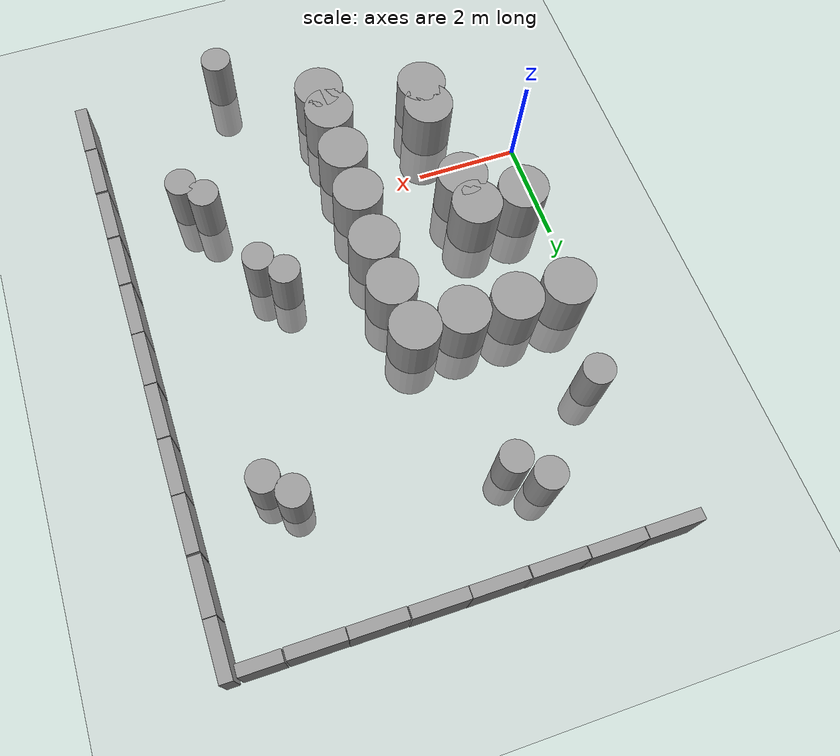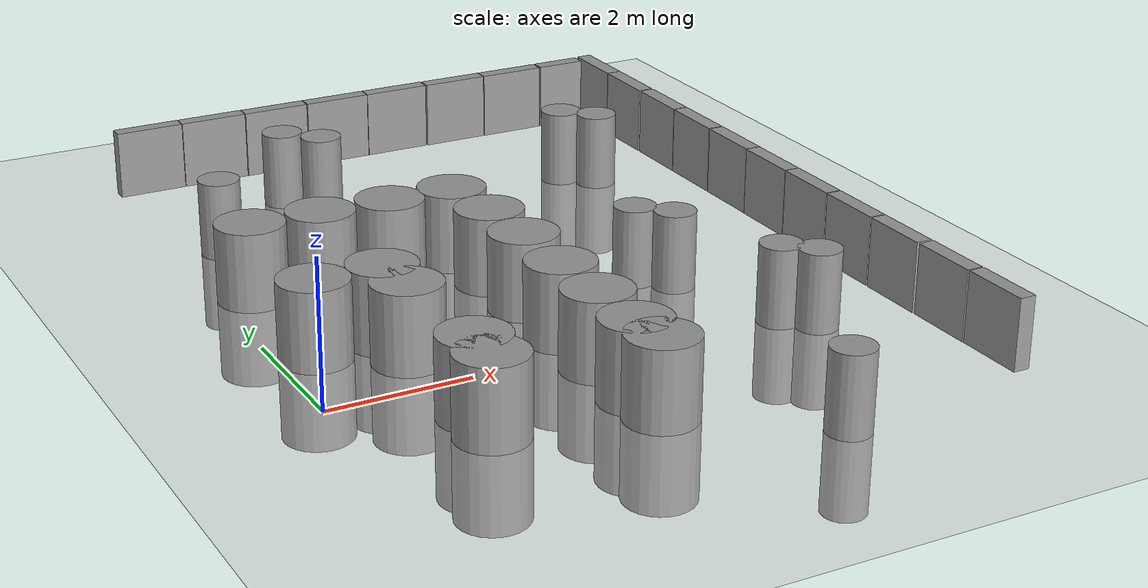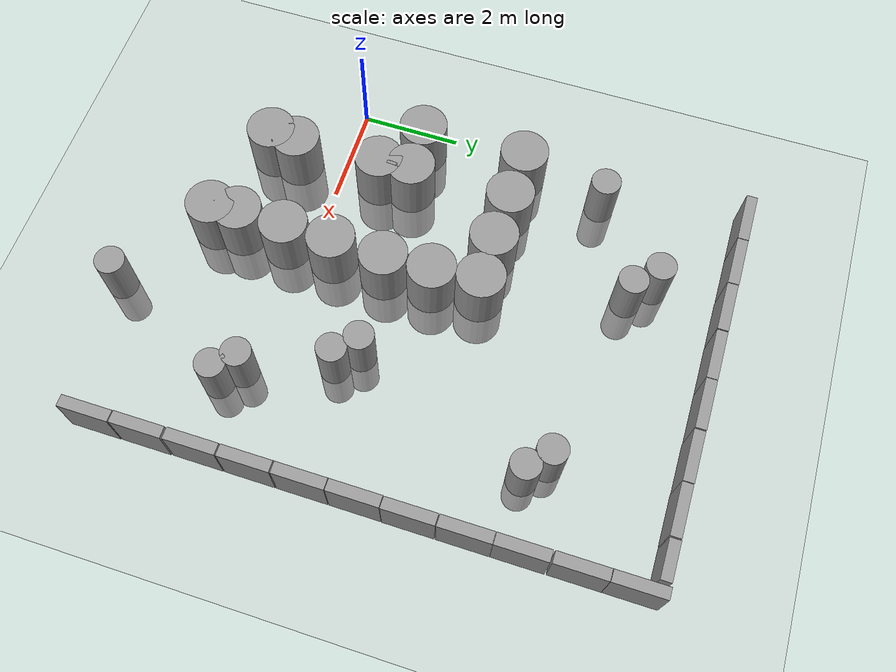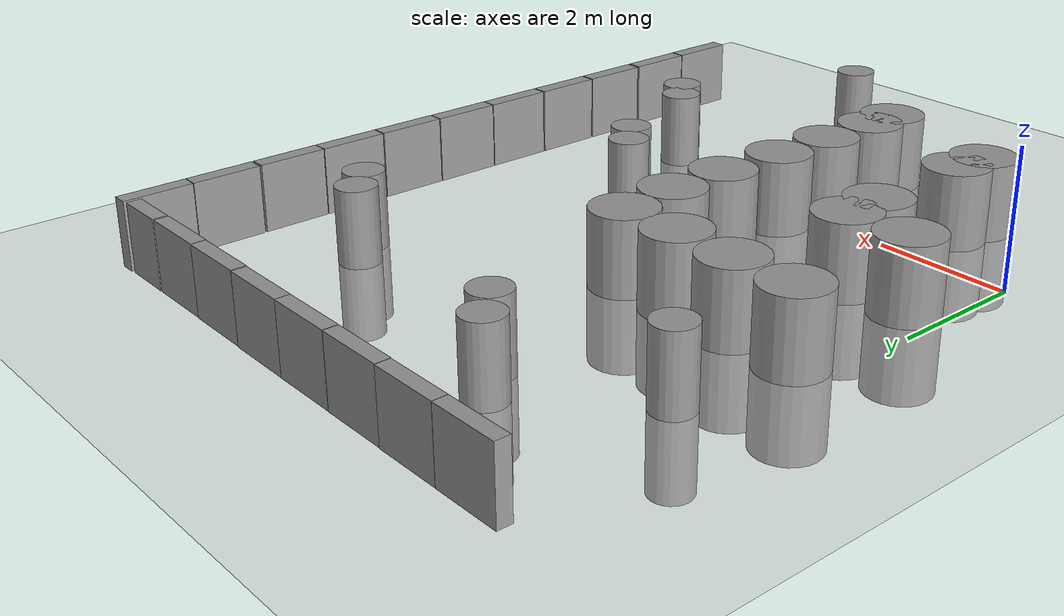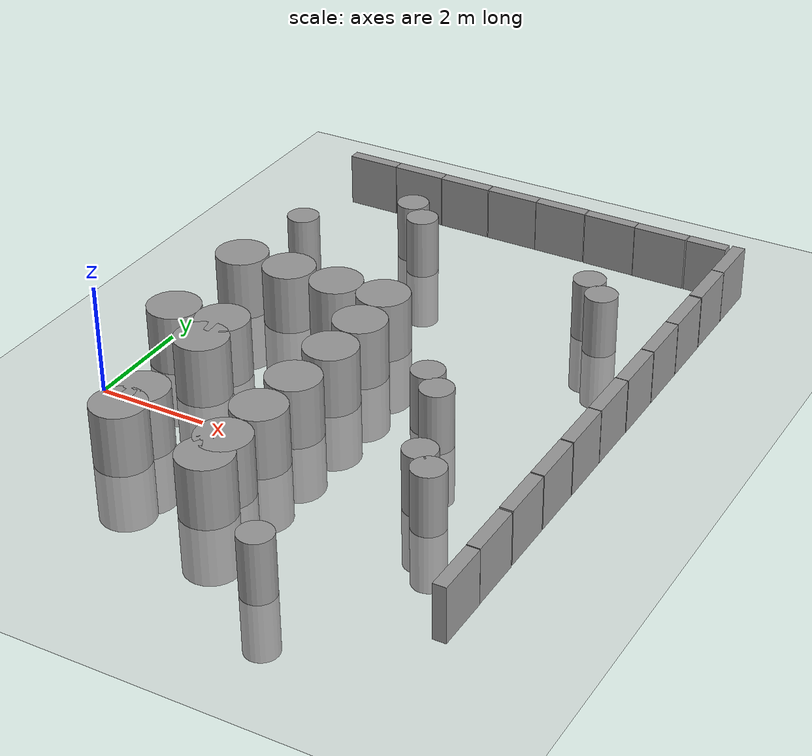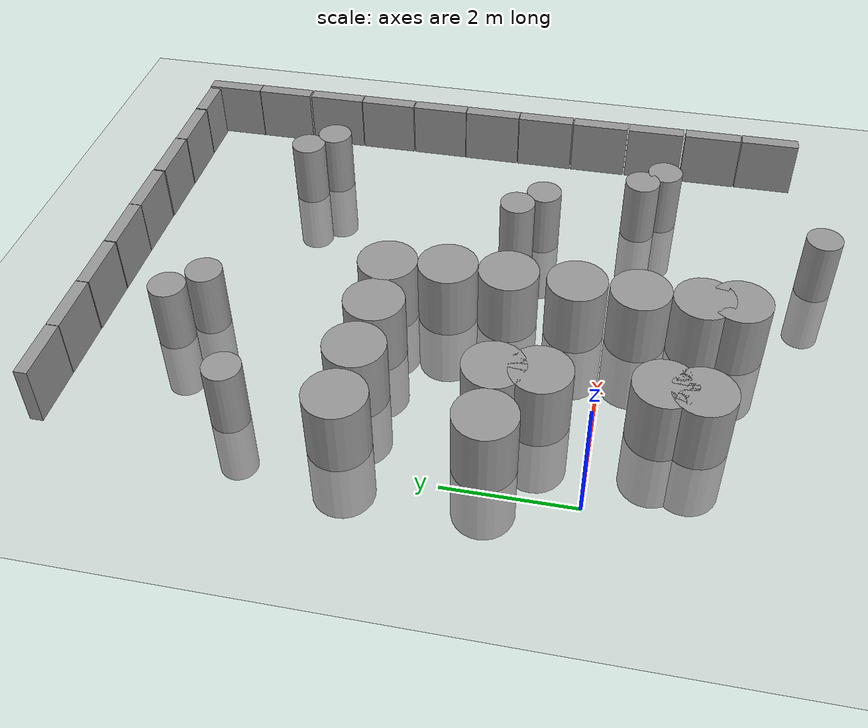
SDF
<sdf version="1.6">
 <world name="default">
  <model name="ground_plane">
   <static>1</static>
   <static>1</static>
   <link name="link">
    <collision name="collision">
     <geometry><plane><normal>0 0 1</normal><size>100 100</size></plane></geometry>
     <surface><friction><ode><mu>100</mu><mu2>50</mu2></ode></friction></surface>
    </collision>
    <visual name="visual">
     <cast_shadows>0</cast_shadows>
     <geometry><plane><normal>0 0 1</normal><size>100 100</size></plane></geometry>
     <material>
      <script><uri>file://media/materials/scripts/gazebo.material</uri><name>Gazebo/Grey</name></script>
     </material>
    </visual>
   </link>
  </model>
  <model name="unit_box_clone_7">
   <pose>0.592841 8.11137 0.499998 0 5e-06 0.000244</pose>
   <link name="link">
    <inertial>
     <mass>1</mass>
     <inertia>
      <ixx>0.166667</ixx>
      <ixy>0</ixy>
      <ixz>0</ixz>
      <iyy>0.166667</iyy>
      <iyz>0</iyz>
      <izz>0.166667</izz>
     </inertia>
    </inertial>
    <collision name="collision"><geometry><box><size>1 0.210541 1</size></box></geometry></collision>
    <visual name="visual">
     <geometry><box><size>1 0.210541 1</size></box></geometry>
     <material>
      <script><name>Gazebo/Grey</name><uri>file://media/materials/scripts/gazebo.material</uri></script>
     </material>
    </visual>
   </link>
  </model>
  <model name="unit_box_clone_8">
   <pose>1.60043 8.10988 0.499998 0 5e-06 0.000244</pose>
   <link name="link">
    <inertial>
     <mass>1</mass>
     <inertia>
      <ixx>0.166667</ixx>
      <ixy>0</ixy>
      <ixz>0</ixz>
      <iyy>0.166667</iyy>
      <iyz>0</iyz>
      <izz>0.166667</izz>
     </inertia>
    </inertial>
    <collision name="collision"><geometry><box><size>1 0.210541 1</size></box></geometry></collision>
    <visual name="visual">
     <geometry><box><size>1 0.210541 1</size></box></geometry>
     <material>
      <script><name>Gazebo/Grey</name><uri>file://media/materials/scripts/gazebo.material</uri></script>
     </material>
    </visual>
   </link>
  </model>
  <model name="unit_box_clone_9">
   <pose>2.60987 8.10269 0.499998 0 5e-06 0.000244</pose>
   <link name="link">
    <inertial>
     <mass>1</mass>
     <inertia>
      <ixx>0.166667</ixx>
      <ixy>0</ixy>
      <ixz>0</ixz>
      <iyy>0.166667</iyy>
      <iyz>0</iyz>
      <izz>0.166667</izz>
     </inertia>
    </inertial>
    <collision name="collision"><geometry><box><size>1 0.210541 1</size></box></geometry></collision>
    <visual name="visual">
     <geometry><box><size>1 0.210541 1</size></box></geometry>
     <material>
      <script><name>Gazebo/Grey</name><uri>file://media/materials/scripts/gazebo.material</uri></script>
     </material>
    </visual>
   </link>
  </model>
  <model name="unit_box_clone_10">
   <pose>3.62649 8.0991 0.499998 0 5e-06 0.000244</pose>
   <link name="link">
    <inertial>
     <mass>1</mass>
     <inertia>
      <ixx>0.166667</ixx>
      <ixy>0</ixy>
      <ixz>0</ixz>
      <iyy>0.166667</iyy>
      <iyz>0</iyz>
      <izz>0.166667</izz>
     </inertia>
    </inertial>
    <collision name="collision"><geometry><box><size>1 0.210541 1</size></box></geometry></collision>
    <visual name="visual">
     <geometry><box><size>1 0.210541 1</size></box></geometry>
     <material>
      <script><name>Gazebo/Grey</name><uri>file://media/materials/scripts/gazebo.material</uri></script>
     </material>
    </visual>
   </link>
  </model>
  <model name="unit_box_clone_11">
   <pose>4.63311 8.09541 0.499998 -0 -5e-06 -0.003164</pose>
   <link name="link">
    <inertial>
     <mass>1</mass>
     <inertia>
      <ixx>0.166667</ixx>
      <ixy>0</ixy>
      <ixz>0</ixz>
      <iyy>0.166667</iyy>
      <iyz>0</iyz>
      <izz>0.166667</izz>
     </inertia>
    </inertial>
    <collision name="collision"><geometry><box><size>1 0.210541 1</size></box></geometry></collision>
    <visual name="visual">
     <geometry><box><size>1 0.210541 1</size></box></geometry>
     <material>
      <script><name>Gazebo/Grey</name><uri>file://media/materials/scripts/gazebo.material</uri></script>
     </material>
    </visual>
   </link>
  </model>
  <model name="unit_box_0_clone_0">
   <pose>8.11522 6.68459 0.5 0 -0 -0.000401</pose>
   <link name="link">
    <inertial>
     <mass>1</mass>
     <inertia>
      <ixx>0.166667</ixx>
      <ixy>0</ixy>
      <ixz>0</ixz>
      <iyy>0.166667</iyy>
      <iyz>0</iyz>
      <izz>0.166667</izz>
     </inertia>
    </inertial>
    <collision name="collision"><geometry><box><size>0.230819 1 1</size></box></geometry></collision>
    <visual name="visual">
     <geometry><box><size>0.230819 1 1</size></box></geometry>
     <material>
      <script><name>Gazebo/Grey</name><uri>file://media/materials/scripts/gazebo.material</uri></script>
     </material>
    </visual>
   </link>
  </model>
  <model name="unit_box_0_clone_1">
   <pose>8.11915 5.6517 0.5 0 -0 0.00028</pose>
   <link name="link">
    <inertial>
     <mass>1</mass>
     <inertia>
      <ixx>0.166667</ixx>
      <ixy>0</ixy>
      <ixz>0</ixz>
      <iyy>0.166667</iyy>
      <iyz>0</iyz>
      <izz>0.166667</izz>
     </inertia>
    </inertial>
    <collision name="collision"><geometry><box><size>0.230819 1 1</size></box></geometry></collision>
    <visual name="visual">
     <geometry><box><size>0.230819 1 1</size></box></geometry>
     <material>
      <script><name>Gazebo/Grey</name><uri>file://media/materials/scripts/gazebo.material</uri></script>
     </material>
    </visual>
   </link>
  </model>
  <model name="unit_box_0_clone_2">
   <pose>8.11914 4.64015 0.5 0 -0 0.000171</pose>
   <link name="link">
    <inertial>
     <mass>1</mass>
     <inertia>
      <ixx>0.166667</ixx>
      <ixy>0</ixy>
      <ixz>0</ixz>
      <iyy>0.166667</iyy>
      <iyz>0</iyz>
      <izz>0.166667</izz>
     </inertia>
    </inertial>
    <collision name="collision"><geometry><box><size>0.230819 1 1</size></box></geometry></collision>
    <visual name="visual">
     <geometry><box><size>0.230819 1 1</size></box></geometry>
     <material>
      <script><name>Gazebo/Grey</name><uri>file://media/materials/scripts/gazebo.material</uri></script>
     </material>
    </visual>
   </link>
  </model>
  <model name="unit_box_0_clone_3">
   <pose>8.11914 3.62225 0.5 0 -0 0.000152</pose>
   <link name="link">
    <inertial>
     <mass>1</mass>
     <inertia>
      <ixx>0.166667</ixx>
      <ixy>0</ixy>
      <ixz>0</ixz>
      <iyy>0.166667</iyy>
      <iyz>0</iyz>
      <izz>0.166667</izz>
     </inertia>
    </inertial>
    <collision name="collision"><geometry><box><size>0.230819 1 1</size></box></geometry></collision>
    <visual name="visual">
     <geometry><box><size>0.230819 1 1</size></box></geometry>
     <material>
      <script><name>Gazebo/Grey</name><uri>file://media/materials/scripts/gazebo.material</uri></script>
     </material>
    </visual>
   </link>
  </model>
  <model name="unit_box_0_clone_4">
   <pose>8.11332 2.61062 0.5 -1e-06 1e-06 -0.001351</pose>
   <link name="link">
    <inertial>
     <mass>1</mass>
     <inertia>
      <ixx>0.166667</ixx>
      <ixy>0</ixy>
      <ixz>0</ixz>
      <iyy>0.166667</iyy>
      <iyz>0</iyz>
      <izz>0.166667</izz>
     </inertia>
    </inertial>
    <collision name="collision"><geometry><box><size>0.230819 1 1</size></box></geometry></collision>
    <visual name="visual">
     <geometry><box><size>0.230819 1 1</size></box></geometry>
     <material>
      <script><name>Gazebo/Grey</name><uri>file://media/materials/scripts/gazebo.material</uri></script>
     </material>
    </visual>
   </link>
  </model>
  <model name="unit_box_0_clone_5">
   <pose>8.11277 1.59918 0.5 0 -0 0.000152</pose>
   <link name="link">
    <inertial>
     <mass>1</mass>
     <inertia>
      <ixx>0.166667</ixx>
      <ixy>0</ixy>
      <ixz>0</ixz>
      <iyy>0.166667</iyy>
      <iyz>0</iyz>
      <izz>0.166667</izz>
     </inertia>
    </inertial>
    <collision name="collision"><geometry><box><size>0.230819 1 1</size></box></geometry></collision>
    <visual name="visual">
     <geometry><box><size>0.230819 1 1</size></box></geometry>
     <material>
      <script><name>Gazebo/Grey</name><uri>file://media/materials/scripts/gazebo.material</uri></script>
     </material>
    </visual>
   </link>
  </model>
  <model name="unit_box_0_clone_6">
   <pose>8.11277 0.574929 0.5 0 -0 0.000152</pose>
   <link name="link">
    <inertial>
     <mass>1</mass>
     <inertia>
      <ixx>0.166667</ixx>
      <ixy>0</ixy>
      <ixz>0</ixz>
      <iyy>0.166667</iyy>
      <iyz>0</iyz>
      <izz>0.166667</izz>
     </inertia>
    </inertial>
    <collision name="collision"><geometry><box><size>0.230819 1 1</size></box></geometry></collision>
    <visual name="visual">
     <geometry><box><size>0.230819 1 1</size></box></geometry>
     <material>
      <script><name>Gazebo/Grey</name><uri>file://media/materials/scripts/gazebo.material</uri></script>
     </material>
    </visual>
   </link>
  </model>
  <model name="unit_box_0_clone_7">
   <pose>8.11276 -0.449329 0.5 0 -0 0.000152</pose>
   <link name="link">
    <inertial>
     <mass>1</mass>
     <inertia>
      <ixx>0.166667</ixx>
      <ixy>0</ixy>
      <ixz>0</ixz>
      <iyy>0.166667</iyy>
      <iyz>0</iyz>
      <izz>0.166667</izz>
     </inertia>
    </inertial>
    <collision name="collision"><geometry><box><size>0.230819 1 1</size></box></geometry></collision>
    <visual name="visual">
     <geometry><box><size>0.230819 1 1</size></box></geometry>
     <material>
      <script><name>Gazebo/Grey</name><uri>file://media/materials/scripts/gazebo.material</uri></script>
     </material>
    </visual>
   </link>
  </model>
  <model name="unit_box_0_clone_8">
   <pose>8.11912 -1.48632 0.5 0 -0 0.000152</pose>
   <link name="link">
    <inertial>
     <mass>1</mass>
     <inertia>
      <ixx>0.166667</ixx>
      <ixy>0</ixy>
      <ixz>0</ixz>
      <iyy>0.166667</iyy>
      <iyz>0</iyz>
      <izz>0.166667</izz>
     </inertia>
    </inertial>
    <collision name="collision"><geometry><box><size>0.230819 1 1</size></box></geometry></collision>
    <visual name="visual">
     <geometry><box><size>0.230819 1 1</size></box></geometry>
     <material>
      <script><name>Gazebo/Grey</name><uri>file://media/materials/scripts/gazebo.material</uri></script>
     </material>
    </visual>
   </link>
  </model>
  <model name="unit_box_0_clone_9">
   <pose>8.12548 -2.50422 0.5 0 -0 0.000152</pose>
   <link name="link">
    <inertial>
     <mass>1</mass>
     <inertia>
      <ixx>0.166667</ixx>
      <ixy>0</ixy>
      <ixz>0</ixz>
      <iyy>0.166667</iyy>
      <iyz>0</iyz>
      <izz>0.166667</izz>
     </inertia>
    </inertial>
    <collision name="collision"><geometry><box><size>0.230819 1 1</size></box></geometry></collision>
    <visual name="visual">
     <geometry><box><size>0.230819 1 1</size></box></geometry>
     <material>
      <script><name>Gazebo/Grey</name><uri>file://media/materials/scripts/gazebo.material</uri></script>
     </material>
    </visual>
   </link>
  </model>
  <model name="unit_box_0_clone_0_clone">
   <pose>8.11438 7.69322 0.5 0 -0 0.000262</pose>
   <link name="link">
    <inertial>
     <mass>1</mass>
     <inertia>
      <ixx>0.166667</ixx>
      <ixy>0</ixy>
      <ixz>0</ixz>
      <iyy>0.166667</iyy>
      <iyz>0</iyz>
      <izz>0.166667</izz>
     </inertia>
    </inertial>
    <collision name="collision"><geometry><box><size>0.230819 1 1</size></box></geometry></collision>
    <visual name="visual">
     <geometry><box><size>0.230819 1 1</size></box></geometry>
     <material>
      <script><name>Gazebo/Grey</name><uri>file://media/materials/scripts/gazebo.material</uri></script>
     </material>
    </visual>
   </link>
  </model>
  <model name="unit_box_clone_11_clone">
   <pose>5.65439 8.08346 0.499998 0 -5e-06 -0.003129</pose>
   <link name="link">
    <inertial>
     <mass>1</mass>
     <inertia>
      <ixx>0.166667</ixx>
      <ixy>0</ixy>
      <ixz>0</ixz>
      <iyy>0.166667</iyy>
      <iyz>0</iyz>
      <izz>0.166667</izz>
     </inertia>
    </inertial>
    <collision name="collision"><geometry><box><size>1 0.210541 1</size></box></geometry></collision>
    <visual name="visual">
     <geometry><box><size>1 0.210541 1</size></box></geometry>
     <material>
      <script><name>Gazebo/Grey</name><uri>file://media/materials/scripts/gazebo.material</uri></script>
     </material>
    </visual>
   </link>
  </model>
  <model name="unit_box_clone_11_clone_0">
   <pose>6.66439 8.07326 0.499998 0 5e-06 -0.003232</pose>
   <link name="link">
    <inertial>
     <mass>1</mass>
     <inertia>
      <ixx>0.166667</ixx>
      <ixy>0</ixy>
      <ixz>0</ixz>
      <iyy>0.166667</iyy>
      <iyz>0</iyz>
      <izz>0.166667</izz>
     </inertia>
    </inertial>
    <collision name="collision"><geometry><box><size>1 0.210541 1</size></box></geometry></collision>
    <visual name="visual">
     <geometry><box><size>1 0.210541 1</size></box></geometry>
     <material>
      <script><name>Gazebo/Grey</name><uri>file://media/materials/scripts/gazebo.material</uri></script>
     </material>
    </visual>
   </link>
  </model>
  <model name="unit_box_clone_11_clone_1_clone">
   <pose>7.56437 8.07323 0.499997 -2e-06 8e-06 -0.005251</pose>
   <link name="link">
    <inertial>
     <mass>1</mass>
     <inertia>
      <ixx>0.166667</ixx>
      <ixy>0</ixy>
      <ixz>0</ixz>
      <iyy>0.166667</iyy>
      <iyz>0</iyz>
      <izz>0.166667</izz>
     </inertia>
    </inertial>
    <collision name="collision"><geometry><box><size>0.750223 0.210541 1</size></box></geometry></collision>
    <visual name="visual">
     <geometry><box><size>0.750223 0.210541 1</size></box></geometry>
     <material>
      <script><name>Gazebo/Grey</name><uri>file://media/materials/scripts/gazebo.material</uri></script>
     </material>
    </visual>
   </link>
  </model>
  <model name="unit_cylinder_153_clone_clone_5_clone_clone_13_clone_0_clone_29_clone_32_clone_0_clone_4_clone_46_clone_42_clone_clone_clone_4_clone_2">
   <static>1</static>
   <pose>5.28272 -3.312 0 0 -0 0</pose>
   <link name="link">
    <inertial>
     <mass>1</mass>
     <inertia><ixx>0.145833</ixx><ixy>0</ixy><ixz>0</ixz><iyy>0.145833</iyy><iyz>0</iyz><izz>0.125</izz></inertia>
    </inertial>
    <collision name="collision">
     <geometry><cylinder><radius>0.295479</radius><length>2.18667</length></cylinder></geometry>
    </collision>
    <visual name="visual">
     <geometry><cylinder><radius>0.295479</radius><length>2.18667</length></cylinder></geometry>
     <material>
      <script><name>Gazebo/Grey</name><uri>file://media/materials/scripts/gazebo.material</uri></script>
     </material>
    </visual>
   </link>
  </model>
  <model name="unit_cylinder_153_clone_clone_5_clone_clone_13_clone_0_clone_29_clone_32_clone_0_clone_4_clone_46_clone_42_clone_clone_clone_3_clone_7">
   <static>1</static>
   <pose>0.506547 1.43966 0 0 -0 0</pose>
   <link name="link">
    <inertial>
     <mass>1</mass>
     <inertia><ixx>0.145833</ixx><ixy>0</ixy><ixz>0</ixz><iyy>0.145833</iyy><iyz>0</iyz><izz>0.125</izz></inertia>
    </inertial>
    <collision name="collision">
     <geometry><cylinder><radius>0.484115</radius><length>2.18667</length></cylinder></geometry>
    </collision>
    <visual name="visual">
     <geometry><cylinder><radius>0.484115</radius><length>2.18667</length></cylinder></geometry>
     <material>
      <script><name>Gazebo/Grey</name><uri>file://media/materials/scripts/gazebo.material</uri></script>
     </material>
    </visual>
   </link>
  </model>
  <model name="unit_cylinder_153_clone_clone_5_clone_clone_13_clone_0_clone_29_clone_32_clone_0_clone_4_clone_46_clone_42_clone_clone_clone_3_clone_8">
   <static>1</static>
   <pose>1.46389 1.48317 0 0 -0 0</pose>
   <link name="link">
    <inertial>
     <mass>1</mass>
     <inertia><ixx>0.145833</ixx><ixy>0</ixy><ixz>0</ixz><iyy>0.145833</iyy><iyz>0</iyz><izz>0.125</izz></inertia>
    </inertial>
    <collision name="collision">
     <geometry><cylinder><radius>0.484115</radius><length>2.18667</length></cylinder></geometry>
    </collision>
    <visual name="visual">
     <geometry><cylinder><radius>0.484115</radius><length>2.18667</length></cylinder></geometry>
     <material>
      <script><name>Gazebo/Grey</name><uri>file://media/materials/scripts/gazebo.material</uri></script>
     </material>
    </visual>
   </link>
  </model>
  <model name="unit_cylinder_153_clone_clone_5_clone_clone_13_clone_0_clone_29_clone_32_clone_0_clone_4_clone_46_clone_42_clone_clone_clone_3_clone_9">
   <static>1</static>
   <pose>1.50739 -1.49765 0 0 -0 0</pose>
   <link name="link">
    <inertial>
     <mass>1</mass>
     <inertia><ixx>0.145833</ixx><ixy>0</ixy><ixz>0</ixz><iyy>0.145833</iyy><iyz>0</iyz><izz>0.125</izz></inertia>
    </inertial>
    <collision name="collision">
     <geometry><cylinder><radius>0.484115</radius><length>2.18667</length></cylinder></geometry>
    </collision>
    <visual name="visual">
     <geometry><cylinder><radius>0.484115</radius><length>2.18667</length></cylinder></geometry>
     <material>
      <script><name>Gazebo/Grey</name><uri>file://media/materials/scripts/gazebo.material</uri></script>
     </material>
    </visual>
   </link>
  </model>
  <model name="unit_cylinder_153_clone_clone_5_clone_clone_13_clone_0_clone_29_clone_32_clone_0_clone_4_clone_46_clone_42_clone_clone_clone_3_clone_33">
   <static>1</static>
   <pose>0.48434 3.56532 0 0 -0 0</pose>
   <link name="link">
    <inertial>
     <mass>1</mass>
     <inertia><ixx>0.145833</ixx><ixy>0</ixy><ixz>0</ixz><iyy>0.145833</iyy><iyz>0</iyz><izz>0.125</izz></inertia>
    </inertial>
    <collision name="collision">
     <geometry><cylinder><radius>0.484115</radius><length>2.18667</length></cylinder></geometry>
    </collision>
    <visual name="visual">
     <geometry><cylinder><radius>0.484115</radius><length>2.18667</length></cylinder></geometry>
     <material>
      <script><name>Gazebo/Grey</name><uri>file://media/materials/scripts/gazebo.material</uri></script>
     </material>
    </visual>
   </link>
  </model>
  <model name="unit_cylinder_153_clone_clone_5_clone_clone_13_clone_0_clone_29_clone_32_clone_0_clone_4_clone_46_clone_42_clone_clone_clone_3_clone_34">
   <static>1</static>
   <pose>1.48361 3.55104 0 0 -0 0</pose>
   <link name="link">
    <inertial>
     <mass>1</mass>
     <inertia><ixx>0.145833</ixx><ixy>0</ixy><ixz>0</ixz><iyy>0.145833</iyy><iyz>0</iyz><izz>0.125</izz></inertia>
    </inertial>
    <collision name="collision">
     <geometry><cylinder><radius>0.484115</radius><length>2.18667</length></cylinder></geometry>
    </collision>
    <visual name="visual">
     <geometry><cylinder><radius>0.484115</radius><length>2.18667</length></cylinder></geometry>
     <material>
      <script><name>Gazebo/Grey</name><uri>file://media/materials/scripts/gazebo.material</uri></script>
     </material>
    </visual>
   </link>
  </model>
  <model name="unit_cylinder_153_clone_clone_5_clone_clone_13_clone_0_clone_29_clone_32_clone_0_clone_4_clone_46_clone_42_clone_clone_clone_3_clone_35">
   <static>1</static>
   <pose>2.48288 3.50821 0 0 -0 0</pose>
   <link name="link">
    <inertial>
     <mass>1</mass>
     <inertia><ixx>0.145833</ixx><ixy>0</ixy><ixz>0</ixz><iyy>0.145833</iyy><iyz>0</iyz><izz>0.125</izz></inertia>
    </inertial>
    <collision name="collision">
     <geometry><cylinder><radius>0.484115</radius><length>2.18667</length></cylinder></geometry>
    </collision>
    <visual name="visual">
     <geometry><cylinder><radius>0.484115</radius><length>2.18667</length></cylinder></geometry>
     <material>
      <script><name>Gazebo/Grey</name><uri>file://media/materials/scripts/gazebo.material</uri></script>
     </material>
    </visual>
   </link>
  </model>
  <model name="unit_cylinder_153_clone_clone_5_clone_clone_13_clone_0_clone_29_clone_32_clone_0_clone_4_clone_46_clone_42_clone_clone_clone_3_clone_36">
   <static>1</static>
   <pose>3.42505 3.52248 0 0 -0 0</pose>
   <link name="link">
    <inertial>
     <mass>1</mass>
     <inertia><ixx>0.145833</ixx><ixy>0</ixy><ixz>0</ixz><iyy>0.145833</iyy><iyz>0</iyz><izz>0.125</izz></inertia>
    </inertial>
    <collision name="collision">
     <geometry><cylinder><radius>0.484115</radius><length>2.18667</length></cylinder></geometry>
    </collision>
    <visual name="visual">
     <geometry><cylinder><radius>0.484115</radius><length>2.18667</length></cylinder></geometry>
     <material>
      <script><name>Gazebo/Grey</name><uri>file://media/materials/scripts/gazebo.material</uri></script>
     </material>
    </visual>
   </link>
  </model>
  <model name="unit_cylinder_153_clone_clone_5_clone_clone_13_clone_0_clone_29_clone_32_clone_0_clone_4_clone_46_clone_42_clone_clone_clone_3_clone_37">
   <static>1</static>
   <pose>3.52498 2.56604 0 0 -0 0</pose>
   <link name="link">
    <inertial>
     <mass>1</mass>
     <inertia><ixx>0.145833</ixx><ixy>0</ixy><ixz>0</ixz><iyy>0.145833</iyy><iyz>0</iyz><izz>0.125</izz></inertia>
    </inertial>
    <collision name="collision">
     <geometry><cylinder><radius>0.484115</radius><length>2.18667</length></cylinder></geometry>
    </collision>
    <visual name="visual">
     <geometry><cylinder><radius>0.484115</radius><length>2.18667</length></cylinder></geometry>
     <material>
      <script><name>Gazebo/Grey</name><uri>file://media/materials/scripts/gazebo.material</uri></script>
     </material>
    </visual>
   </link>
  </model>
  <model name="unit_cylinder_153_clone_clone_5_clone_clone_13_clone_0_clone_29_clone_32_clone_0_clone_4_clone_46_clone_42_clone_clone_clone_3_clone_38">
   <static>1</static>
   <pose>1.49787 0.810183 0 0 -0 0</pose>
   <link name="link">
    <inertial>
     <mass>1</mass>
     <inertia><ixx>0.145833</ixx><ixy>0</ixy><ixz>0</ixz><iyy>0.145833</iyy><iyz>0</iyz><izz>0.125</izz></inertia>
    </inertial>
    <collision name="collision">
     <geometry><cylinder><radius>0.484115</radius><length>2.18667</length></cylinder></geometry>
    </collision>
    <visual name="visual">
     <geometry><cylinder><radius>0.484115</radius><length>2.18667</length></cylinder></geometry>
     <material>
      <script><name>Gazebo/Grey</name><uri>file://media/materials/scripts/gazebo.material</uri></script>
     </material>
    </visual>
   </link>
  </model>
  <model name="unit_cylinder_153_clone_clone_5_clone_clone_13_clone_0_clone_29_clone_32_clone_0_clone_4_clone_46_clone_42_clone_clone_clone_3_clone_39">
   <static>1</static>
   <pose>1.55497 -0.945681 0 0 -0 0</pose>
   <link name="link">
    <inertial>
     <mass>1</mass>
     <inertia><ixx>0.145833</ixx><ixy>0</ixy><ixz>0</ixz><iyy>0.145833</iyy><iyz>0</iyz><izz>0.125</izz></inertia>
    </inertial>
    <collision name="collision">
     <geometry><cylinder><radius>0.484115</radius><length>2.18667</length></cylinder></geometry>
    </collision>
    <visual name="visual">
     <geometry><cylinder><radius>0.484115</radius><length>2.18667</length></cylinder></geometry>
     <material>
      <script><name>Gazebo/Grey</name><uri>file://media/materials/scripts/gazebo.material</uri></script>
     </material>
    </visual>
   </link>
  </model>
  <model name="unit_cylinder_153_clone_clone_5_clone_clone_13_clone_0_clone_29_clone_32_clone_0_clone_4_clone_46_clone_42_clone_clone_clone_3_clone_1">
   <static>1</static>
   <pose>3.54208 1.59524 0 0 -0 0</pose>
   <link name="link">
    <inertial>
     <mass>1</mass>
     <inertia><ixx>0.145833</ixx><ixy>0</ixy><ixz>0</ixz><iyy>0.145833</iyy><iyz>0</iyz><izz>0.125</izz></inertia>
    </inertial>
    <collision name="collision">
     <geometry><cylinder><radius>0.484115</radius><length>2.18667</length></cylinder></geometry>
    </collision>
    <visual name="visual">
     <geometry><cylinder><radius>0.484115</radius><length>2.18667</length></cylinder></geometry>
     <material>
      <script><name>Gazebo/Grey</name><uri>file://media/materials/scripts/gazebo.material</uri></script>
     </material>
    </visual>
   </link>
  </model>
  <model name="unit_cylinder_153_clone_clone_5_clone_clone_13_clone_0_clone_29_clone_32_clone_0_clone_4_clone_46_clone_42_clone_clone_clone_3_clone_40">
   <static>1</static>
   <pose>3.50407 0.512217 0 0 -0 0</pose>
   <link name="link">
    <inertial>
     <mass>1</mass>
     <inertia><ixx>0.145833</ixx><ixy>0</ixy><ixz>0</ixz><iyy>0.145833</iyy><iyz>0</iyz><izz>0.125</izz></inertia>
    </inertial>
    <collision name="collision">
     <geometry><cylinder><radius>0.484115</radius><length>2.18667</length></cylinder></geometry>
    </collision>
    <visual name="visual">
     <geometry><cylinder><radius>0.484115</radius><length>2.18667</length></cylinder></geometry>
     <material>
      <script><name>Gazebo/Grey</name><uri>file://media/materials/scripts/gazebo.material</uri></script>
     </material>
    </visual>
   </link>
  </model>
  <model name="unit_cylinder_153_clone_clone_5_clone_clone_13_clone_0_clone_29_clone_32_clone_0_clone_4_clone_46_clone_42_clone_clone_clone_3_clone_41">
   <static>1</static>
   <pose>3.48506 -0.475805 0 0 -0 0</pose>
   <link name="link">
    <inertial>
     <mass>1</mass>
     <inertia><ixx>0.145833</ixx><ixy>0</ixy><ixz>0</ixz><iyy>0.145833</iyy><iyz>0</iyz><izz>0.125</izz></inertia>
    </inertial>
    <collision name="collision">
     <geometry><cylinder><radius>0.484115</radius><length>2.18667</length></cylinder></geometry>
    </collision>
    <visual name="visual">
     <geometry><cylinder><radius>0.484115</radius><length>2.18667</length></cylinder></geometry>
     <material>
      <script><name>Gazebo/Grey</name><uri>file://media/materials/scripts/gazebo.material</uri></script>
     </material>
    </visual>
   </link>
  </model>
  <model name="unit_cylinder_153_clone_clone_5_clone_clone_13_clone_0_clone_29_clone_32_clone_0_clone_4_clone_46_clone_42_clone_clone_clone_3_clone_42">
   <static>1</static>
   <pose>3.46606 -1.44483 0 0 -0 0</pose>
   <link name="link">
    <inertial>
     <mass>1</mass>
     <inertia><ixx>0.145833</ixx><ixy>0</ixy><ixz>0</ixz><iyy>0.145833</iyy><iyz>0</iyz><izz>0.125</izz></inertia>
    </inertial>
    <collision name="collision">
     <geometry><cylinder><radius>0.484115</radius><length>2.18667</length></cylinder></geometry>
    </collision>
    <visual name="visual">
     <geometry><cylinder><radius>0.484115</radius><length>2.18667</length></cylinder></geometry>
     <material>
      <script><name>Gazebo/Grey</name><uri>file://media/materials/scripts/gazebo.material</uri></script>
     </material>
    </visual>
   </link>
  </model>
  <model name="unit_cylinder_153_clone_clone_5_clone_clone_13_clone_0_clone_29_clone_32_clone_0_clone_4_clone_46_clone_42_clone_clone_clone_3_clone_44">
   <static>1</static>
   <pose>3.50406 -2 0 0 -0 0</pose>
   <link name="link">
    <inertial>
     <mass>1</mass>
     <inertia><ixx>0.145833</ixx><ixy>0</ixy><ixz>0</ixz><iyy>0.145833</iyy><iyz>0</iyz><izz>0.125</izz></inertia>
    </inertial>
    <collision name="collision">
     <geometry><cylinder><radius>0.484115</radius><length>2.18667</length></cylinder></geometry>
    </collision>
    <visual name="visual">
     <geometry><cylinder><radius>0.484115</radius><length>2.18667</length></cylinder></geometry>
     <material>
      <script><name>Gazebo/Grey</name><uri>file://media/materials/scripts/gazebo.material</uri></script>
     </material>
    </visual>
   </link>
  </model>
  <model name="unit_cylinder_153_clone_clone_5_clone_clone_13_clone_0_clone_29_clone_32_clone_0_clone_4_clone_46_clone_42_clone_clone_clone_4_clone_2_clone_2">
   <static>1</static>
   <pose>0.684563 5.2925 0 0 -0 0</pose>
   <link name="link">
    <inertial>
     <mass>1</mass>
     <inertia><ixx>0.145833</ixx><ixy>0</ixy><ixz>0</ixz><iyy>0.145833</iyy><iyz>0</iyz><izz>0.125</izz></inertia>
    </inertial>
    <collision name="collision">
     <geometry><cylinder><radius>0.295479</radius><length>2.18667</length></cylinder></geometry>
    </collision>
    <visual name="visual">
     <geometry><cylinder><radius>0.295479</radius><length>2.18667</length></cylinder></geometry>
     <material>
      <script><name>Gazebo/Grey</name><uri>file://media/materials/scripts/gazebo.material</uri></script>
     </material>
    </visual>
   </link>
  </model>
  <model name="unit_cylinder_153_clone_clone_5_clone_clone_13_clone_0_clone_29_clone_32_clone_0_clone_4_clone_46_clone_42_clone_clone_clone_4_clone_2_clone_3">
   <static>1</static>
   <pose>2.19947 6.73438 0 0 -0 0</pose>
   <link name="link">
    <inertial>
     <mass>1</mass>
     <inertia><ixx>0.145833</ixx><ixy>0</ixy><ixz>0</ixz><iyy>0.145833</iyy><iyz>0</iyz><izz>0.125</izz></inertia>
    </inertial>
    <collision name="collision">
     <geometry><cylinder><radius>0.295479</radius><length>2.18667</length></cylinder></geometry>
    </collision>
    <visual name="visual">
     <geometry><cylinder><radius>0.295479</radius><length>2.18667</length></cylinder></geometry>
     <material>
      <script><name>Gazebo/Grey</name><uri>file://media/materials/scripts/gazebo.material</uri></script>
     </material>
    </visual>
   </link>
  </model>
  <model name="unit_cylinder_153_clone_clone_5_clone_clone_13_clone_0_clone_29_clone_32_clone_0_clone_4_clone_46_clone_42_clone_clone_clone_4_clone_2_clone_4">
   <static>1</static>
   <pose>2.63751 6.29634 0 0 -0 0</pose>
   <link name="link">
    <inertial>
     <mass>1</mass>
     <inertia><ixx>0.145833</ixx><ixy>0</ixy><ixz>0</ixz><iyy>0.145833</iyy><iyz>0</iyz><izz>0.125</izz></inertia>
    </inertial>
    <collision name="collision">
     <geometry><cylinder><radius>0.295479</radius><length>2.18667</length></cylinder></geometry>
    </collision>
    <visual name="visual">
     <geometry><cylinder><radius>0.295479</radius><length>2.18667</length></cylinder></geometry>
     <material>
      <script><name>Gazebo/Grey</name><uri>file://media/materials/scripts/gazebo.material</uri></script>
     </material>
    </visual>
   </link>
  </model>
  <model name="unit_cylinder_153_clone_clone_5_clone_clone_13_clone_0_clone_29_clone_32_clone_0_clone_4_clone_46_clone_42_clone_clone_clone_4_clone_2_clone_5">
   <static>1</static>
   <pose>6.32436 5.69401 0 0 -0 0</pose>
   <link name="link">
    <inertial>
     <mass>1</mass>
     <inertia><ixx>0.145833</ixx><ixy>0</ixy><ixz>0</ixz><iyy>0.145833</iyy><iyz>0</iyz><izz>0.125</izz></inertia>
    </inertial>
    <collision name="collision">
     <geometry><cylinder><radius>0.295479</radius><length>2.18667</length></cylinder></geometry>
    </collision>
    <visual name="visual">
     <geometry><cylinder><radius>0.295479</radius><length>2.18667</length></cylinder></geometry>
     <material>
      <script><name>Gazebo/Grey</name><uri>file://media/materials/scripts/gazebo.material</uri></script>
     </material>
    </visual>
   </link>
  </model>
  <model name="unit_cylinder_153_clone_clone_5_clone_clone_13_clone_0_clone_29_clone_32_clone_0_clone_4_clone_46_clone_42_clone_clone_clone_4_clone_2_clone_6">
   <static>1</static>
   <pose>6.72589 5.31072 0 0 -0 0</pose>
   <link name="link">
    <inertial>
     <mass>1</mass>
     <inertia><ixx>0.145833</ixx><ixy>0</ixy><ixz>0</ixz><iyy>0.145833</iyy><iyz>0</iyz><izz>0.125</izz></inertia>
    </inertial>
    <collision name="collision">
     <geometry><cylinder><radius>0.295479</radius><length>2.18667</length></cylinder></geometry>
    </collision>
    <visual name="visual">
     <geometry><cylinder><radius>0.295479</radius><length>2.18667</length></cylinder></geometry>
     <material>
      <script><name>Gazebo/Grey</name><uri>file://media/materials/scripts/gazebo.material</uri></script>
     </material>
    </visual>
   </link>
  </model>
  <model name="unit_cylinder_153_clone_clone_5_clone_clone_13_clone_0_clone_29_clone_32_clone_0_clone_4_clone_46_clone_42_clone_clone_clone_4_clone_2_clone_7">
   <static>1</static>
   <pose>5.30659 1.72483 0 0 -0 0</pose>
   <link name="link">
    <inertial>
     <mass>1</mass>
     <inertia><ixx>0.145833</ixx><ixy>0</ixy><ixz>0</ixz><iyy>0.145833</iyy><iyz>0</iyz><izz>0.125</izz></inertia>
    </inertial>
    <collision name="collision">
     <geometry><cylinder><radius>0.295479</radius><length>2.18667</length></cylinder></geometry>
    </collision>
    <visual name="visual">
     <geometry><cylinder><radius>0.295479</radius><length>2.18667</length></cylinder></geometry>
     <material>
      <script><name>Gazebo/Grey</name><uri>file://media/materials/scripts/gazebo.material</uri></script>
     </material>
    </visual>
   </link>
  </model>
  <model name="unit_cylinder_153_clone_clone_5_clone_clone_13_clone_0_clone_29_clone_32_clone_0_clone_4_clone_46_clone_42_clone_clone_clone_4_clone_2_clone_8">
   <static>1</static>
   <pose>5.6923 1.32158 0 0 -0 0</pose>
   <link name="link">
    <inertial>
     <mass>1</mass>
     <inertia><ixx>0.145833</ixx><ixy>0</ixy><ixz>0</ixz><iyy>0.145833</iyy><iyz>0</iyz><izz>0.125</izz></inertia>
    </inertial>
    <collision name="collision">
     <geometry><cylinder><radius>0.295479</radius><length>2.18667</length></cylinder></geometry>
    </collision>
    <visual name="visual">
     <geometry><cylinder><radius>0.295479</radius><length>2.18667</length></cylinder></geometry>
     <material>
      <script><name>Gazebo/Grey</name><uri>file://media/materials/scripts/gazebo.material</uri></script>
     </material>
    </visual>
   </link>
  </model>
  <model name="unit_cylinder_153_clone_clone_5_clone_clone_13_clone_0_clone_29_clone_32_clone_0_clone_4_clone_46_clone_42_clone_clone_clone_4_clone_2_clone_9">
   <static>1</static>
   <pose>6.30593 -0.308951 0 0 -0 0</pose>
   <link name="link">
    <inertial>
     <mass>1</mass>
     <inertia><ixx>0.145833</ixx><ixy>0</ixy><ixz>0</ixz><iyy>0.145833</iyy><iyz>0</iyz><izz>0.125</izz></inertia>
    </inertial>
    <collision name="collision">
     <geometry><cylinder><radius>0.295479</radius><length>2.18667</length></cylinder></geometry>
    </collision>
    <visual name="visual">
     <geometry><cylinder><radius>0.295479</radius><length>2.18667</length></cylinder></geometry>
     <material>
      <script><name>Gazebo/Grey</name><uri>file://media/materials/scripts/gazebo.material</uri></script>
     </material>
    </visual>
   </link>
  </model>
  <model name="unit_cylinder_153_clone_clone_5_clone_clone_13_clone_0_clone_29_clone_32_clone_0_clone_4_clone_46_clone_42_clone_clone_clone_4_clone_2_clone_10">
   <static>1</static>
   <pose>6.65658 -0.677136 0 0 -0 0</pose>
   <link name="link">
    <inertial>
     <mass>1</mass>
     <inertia><ixx>0.145833</ixx><ixy>0</ixy><ixz>0</ixz><iyy>0.145833</iyy><iyz>0</iyz><izz>0.125</izz></inertia>
    </inertial>
    <collision name="collision">
     <geometry><cylinder><radius>0.295479</radius><length>2.18667</length></cylinder></geometry>
    </collision>
    <visual name="visual">
     <geometry><cylinder><radius>0.295479</radius><length>2.18667</length></cylinder></geometry>
     <material>
      <script><name>Gazebo/Grey</name><uri>file://media/materials/scripts/gazebo.material</uri></script>
     </material>
    </visual>
   </link>
  </model>
 </world>
</sdf>
